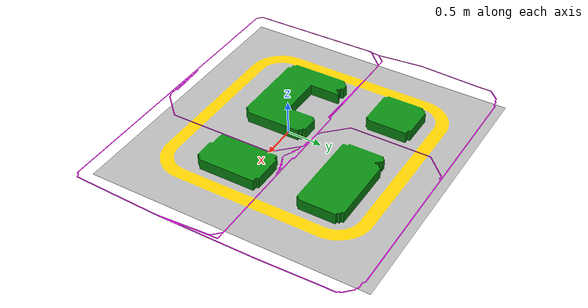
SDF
<?xml version="1.0"?>
<sdf version="1.7">
  <world name="mirror_x_overlay_view_world">
    <scene>
      <ambient>0.85 0.85 0.85 1</ambient>
      <background>0.86 0.91 0.98 1</background>
      <shadows>0</shadows>
    </scene>
    <gui fullscreen="0">
      <camera name="user_camera">
        <pose>0 0 7.5 0 1.570796 1.570796</pose>
        <view_controller>orbit</view_controller>
      </camera>
    </gui>
    <light name="sun" type="directional">
      <cast_shadows>0</cast_shadows>
      <pose>0 0 8 0 0 0</pose>
      <diffuse>1 1 1 1</diffuse>
      <specular>0.1 0.1 0.1 1</specular>
      <direction>0 0 -1</direction>
    </light>
    <model name="autonomous_map_3d_mirror_x_view">
      <static>1</static>
      <pose>0 0.3 0 0 0 0</pose>
      <link name="map_link">
        <visual name="mirrored_map_visual">
          <geometry>
            <mesh>
              <uri>file:///home/quocbao/my_robot_vision_full_project/my_robot_vision/models/autonomous_map_3d/meshes/autonomous_map_3d.dae</uri>
              <scale>-1 1 1</scale>
            </mesh>
          </geometry>
        </visual>
      </link>
    </model>
    <model name="route_overlay_code_transform_magenta">
      <static>1</static>
      <pose>0 0 0 0 0 0</pose>
      <link name="route_overlay_link">
        <visual name="route_overlay_mesh_visual">
          <geometry>
            <mesh>
              <uri>file:///home/quocbao/my_robot_vision_full_project/my_robot_vision/route_drawing_lab/outputs/session_20260608_132843/preview_manual_middle/route_overlay_code_transform_magenta.dae</uri>
            </mesh>
          </geometry>
          <material>
            <ambient>1 0 1 1</ambient>
            <diffuse>1 0 1 1</diffuse>
            <emissive>0.7 0 0.7 1</emissive>
          </material>
        </visual>
      </link>
    </model>
  </world>
</sdf>
